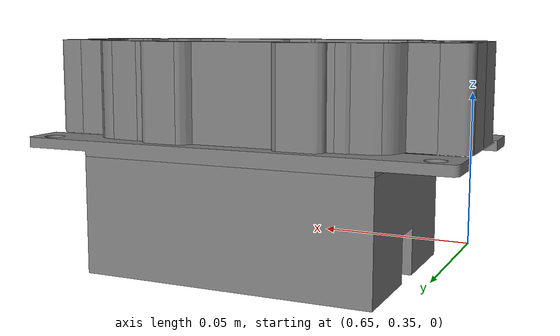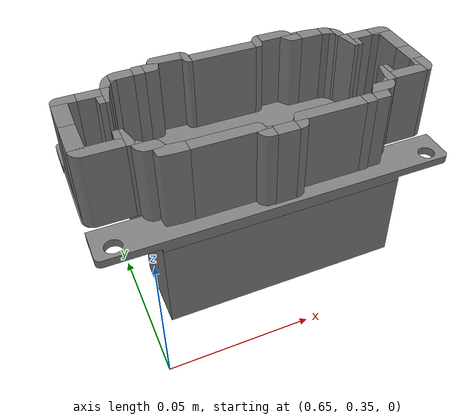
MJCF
<?xml version="1.0" ?>
<mujoco>
   <asset>
      <mesh name="Female_NIST_002r005002" file="Female_NIST/Female_NIST_002r.005002.stl"/>
      <mesh name="Female_NIST_002r006005" file="Female_NIST/Female_NIST_002r.006005.stl"/>
      <mesh name="Female_NIST_002r005000" file="Female_NIST/Female_NIST_002r.005000.stl"/>
      <mesh name="Female_NIST_002r001005" file="Female_NIST/Female_NIST_002r.001005.stl"/>
      <mesh name="Female_NIST_002r003003" file="Female_NIST/Female_NIST_002r.003003.stl"/>
      <mesh name="Female_NIST_002r006009" file="Female_NIST/Female_NIST_002r.006009.stl"/>
      <mesh name="Female_NIST_002r004008" file="Female_NIST/Female_NIST_002r.004008.stl"/>
      <mesh name="Female_NIST_002r004003" file="Female_NIST/Female_NIST_002r.004003.stl"/>
      <mesh name="Female_NIST_002r003000" file="Female_NIST/Female_NIST_002r.003000.stl"/>
      <mesh name="Female_NIST_002r005003" file="Female_NIST/Female_NIST_002r.005003.stl"/>
      <mesh name="Female_NIST_002r002003" file="Female_NIST/Female_NIST_002r.002003.stl"/>
      <mesh name="Female_NIST_002r006002" file="Female_NIST/Female_NIST_002r.006002.stl"/>
      <mesh name="Female_NIST_002r006004" file="Female_NIST/Female_NIST_002r.006004.stl"/>
      <mesh name="Female_NIST_002r004007" file="Female_NIST/Female_NIST_002r.004007.stl"/>
      <mesh name="Female_NIST_002r004001" file="Female_NIST/Female_NIST_002r.004001.stl"/>
      <mesh name="Female_NIST_002r002000" file="Female_NIST/Female_NIST_002r.002000.stl"/>
      <mesh name="Female_NIST_002r003006" file="Female_NIST/Female_NIST_002r.003006.stl"/>
      <mesh name="Female_NIST_002r005004" file="Female_NIST/Female_NIST_002r.005004.stl"/>
      <mesh name="Female_NIST_003" file="Female_NIST/Female_NIST_003.stl"/>
      <mesh name="Female_NIST_002r003002" file="Female_NIST/Female_NIST_002r.003002.stl"/>
      <mesh name="Female_NIST_002r002002" file="Female_NIST/Female_NIST_002r.002002.stl"/>
      <mesh name="Female_NIST_002r001006" file="Female_NIST/Female_NIST_002r.001006.stl"/>
      <mesh name="Female_NIST_002r005001" file="Female_NIST/Female_NIST_002r.005001.stl"/>
      <mesh name="Female_NIST_002r004005" file="Female_NIST/Female_NIST_002r.004005.stl"/>
      <mesh name="Female_NIST_002r003005" file="Female_NIST/Female_NIST_002r.003005.stl"/>
      <mesh name="Female_NIST_002r005005" file="Female_NIST/Female_NIST_002r.005005.stl"/>
      <mesh name="Female_NIST_001" file="Female_NIST/Female_NIST_001.stl"/>
      <mesh name="Female_NIST_002r006007" file="Female_NIST/Female_NIST_002r.006007.stl"/>
      <mesh name="Female_NIST_002r003009" file="Female_NIST/Female_NIST_002r.003009.stl"/>
      <mesh name="Female_NIST_004" file="Female_NIST/Female_NIST_004.stl"/>
      <mesh name="Female_NIST_002r004000" file="Female_NIST/Female_NIST_002r.004000.stl"/>
      <mesh name="Female_NIST_002r001002" file="Female_NIST/Female_NIST_002r.001002.stl"/>
      <mesh name="Female_NIST_002r001003" file="Female_NIST/Female_NIST_002r.001003.stl"/>
      <mesh name="Female_NIST_002r003007" file="Female_NIST/Female_NIST_002r.003007.stl"/>
      <mesh name="Female_NIST_002r004002" file="Female_NIST/Female_NIST_002r.004002.stl"/>
      <mesh name="Female_NIST_002r001004" file="Female_NIST/Female_NIST_002r.001004.stl"/>
      <mesh name="Female_NIST_002r003001" file="Female_NIST/Female_NIST_002r.003001.stl"/>
      <mesh name="Female_NIST_002r003008" file="Female_NIST/Female_NIST_002r.003008.stl"/>
      <mesh name="Female_NIST_002r005007" file="Female_NIST/Female_NIST_002r.005007.stl"/>
      <mesh name="Female_NIST_002r002005" file="Female_NIST/Female_NIST_002r.002005.stl"/>
      <mesh name="Female_NIST_002r001001" file="Female_NIST/Female_NIST_002r.001001.stl"/>
      <mesh name="Female_NIST_002r002004" file="Female_NIST/Female_NIST_002r.002004.stl"/>
      <mesh name="Female_NIST_002r004006" file="Female_NIST/Female_NIST_002r.004006.stl"/>
      <mesh name="Female_NIST_002r006000" file="Female_NIST/Female_NIST_002r.006000.stl"/>
      <mesh name="Female_NIST_002r005006" file="Female_NIST/Female_NIST_002r.005006.stl"/>
      <mesh name="Female_NIST_002r006001" file="Female_NIST/Female_NIST_002r.006001.stl"/>
      <mesh name="Female_NIST_002r002001" file="Female_NIST/Female_NIST_002r.002001.stl"/>
      <mesh name="Female_NIST_002r006006" file="Female_NIST/Female_NIST_002r.006006.stl"/>
      <mesh name="Female_NIST_002r006008" file="Female_NIST/Female_NIST_002r.006008.stl"/>
      <mesh name="Female_NIST_002r003004" file="Female_NIST/Female_NIST_002r.003004.stl"/>
      <mesh name="Female_NIST_002r004004" file="Female_NIST/Female_NIST_002r.004004.stl"/>
      <mesh name="Female_NIST_002r006003" file="Female_NIST/Female_NIST_002r.006003.stl"/>
      <mesh name="Female_NIST_002r001000" file="Female_NIST/Female_NIST_002r.001000.stl"/>
   </asset>
   <worldbody>
      <body name="nist_female" pos="0.7 0.4 -0.00002">
         <freejoint name="free_joint_female"/>
         <inertial pos="0 0 0" mass="0.1" diaginertia="0.001 0.001 0.001"/>
         <geom name="Female_NIST_002r005002" type="mesh" mesh="Female_NIST_002r005002" pos="0 0 0" conaffinity="1" contype="1"/>
         <geom name="Female_NIST_002r006005" type="mesh" mesh="Female_NIST_002r006005" pos="0 0 0" conaffinity="1" contype="1"/>
         <geom name="Female_NIST_002r005000" type="mesh" mesh="Female_NIST_002r005000" pos="0 0 0" conaffinity="1" contype="1"/>
         <geom name="Female_NIST_002r001005" type="mesh" mesh="Female_NIST_002r001005" pos="0 0 0" conaffinity="1" contype="1"/>
         <geom name="Female_NIST_002r003003" type="mesh" mesh="Female_NIST_002r003003" pos="0 0 0" conaffinity="1" contype="1"/>
         <geom name="Female_NIST_002r006009" type="mesh" mesh="Female_NIST_002r006009" pos="0 0 0" conaffinity="1" contype="1"/>
         <geom name="Female_NIST_002r004008" type="mesh" mesh="Female_NIST_002r004008" pos="0 0 0" conaffinity="1" contype="1"/>
         <geom name="Female_NIST_002r004003" type="mesh" mesh="Female_NIST_002r004003" pos="0 0 0" conaffinity="1" contype="1"/>
         <geom name="Female_NIST_002r003000" type="mesh" mesh="Female_NIST_002r003000" pos="0 0 0" conaffinity="1" contype="1"/>
         <geom name="Female_NIST_002r005003" type="mesh" mesh="Female_NIST_002r005003" pos="0 0 0" conaffinity="1" contype="1"/>
         <geom name="Female_NIST_002r002003" type="mesh" mesh="Female_NIST_002r002003" pos="0 0 0" conaffinity="1" contype="1"/>
         <geom name="Female_NIST_002r006002" type="mesh" mesh="Female_NIST_002r006002" pos="0 0 0" conaffinity="1" contype="1"/>
         <geom name="Female_NIST_002r006004" type="mesh" mesh="Female_NIST_002r006004" pos="0 0 0" conaffinity="1" contype="1"/>
         <geom name="Female_NIST_002r004007" type="mesh" mesh="Female_NIST_002r004007" pos="0 0 0" conaffinity="1" contype="1"/>
         <geom name="Female_NIST_002r004001" type="mesh" mesh="Female_NIST_002r004001" pos="0 0 0" conaffinity="1" contype="1"/>
         <geom name="Female_NIST_002r002000" type="mesh" mesh="Female_NIST_002r002000" pos="0 0 0" conaffinity="1" contype="1"/>
         <geom name="Female_NIST_002r003006" type="mesh" mesh="Female_NIST_002r003006" pos="0 0 0" conaffinity="1" contype="1"/>
         <geom name="Female_NIST_002r005004" type="mesh" mesh="Female_NIST_002r005004" pos="0 0 0" conaffinity="1" contype="1"/>
         <geom name="Female_NIST_003" type="mesh" mesh="Female_NIST_003" pos="0 0 0" conaffinity="1" contype="1"/>
         <geom name="Female_NIST_002r003002" type="mesh" mesh="Female_NIST_002r003002" pos="0 0 0" conaffinity="1" contype="1"/>
         <geom name="Female_NIST_002r002002" type="mesh" mesh="Female_NIST_002r002002" pos="0 0 0" conaffinity="1" contype="1"/>
         <geom name="Female_NIST_002r001006" type="mesh" mesh="Female_NIST_002r001006" pos="0 0 0" conaffinity="1" contype="1"/>
         <geom name="Female_NIST_002r005001" type="mesh" mesh="Female_NIST_002r005001" pos="0 0 0" conaffinity="1" contype="1"/>
         <geom name="Female_NIST_002r004005" type="mesh" mesh="Female_NIST_002r004005" pos="0 0 0" conaffinity="1" contype="1"/>
         <geom name="Female_NIST_002r003005" type="mesh" mesh="Female_NIST_002r003005" pos="0 0 0" conaffinity="1" contype="1"/>
         <geom name="Female_NIST_002r005005" type="mesh" mesh="Female_NIST_002r005005" pos="0 0 0" conaffinity="1" contype="1"/>
         <geom name="Female_NIST_001" type="mesh" mesh="Female_NIST_001" pos="0 0 0" conaffinity="1" contype="1"/>
         <geom name="Female_NIST_002r006007" type="mesh" mesh="Female_NIST_002r006007" pos="0 0 0" conaffinity="1" contype="1"/>
         <geom name="Female_NIST_002r003009" type="mesh" mesh="Female_NIST_002r003009" pos="0 0 0" conaffinity="1" contype="1"/>
         <geom name="Female_NIST_002r004000" type="mesh" mesh="Female_NIST_002r004000" pos="0 0 0" conaffinity="1" contype="1"/>
         <geom name="Female_NIST_002r001002" type="mesh" mesh="Female_NIST_002r001002" pos="0 0 0" conaffinity="1" contype="1"/>
         <geom name="Female_NIST_002r001003" type="mesh" mesh="Female_NIST_002r001003" pos="0 0 0" conaffinity="1" contype="1"/>
         <geom name="Female_NIST_002r003007" type="mesh" mesh="Female_NIST_002r003007" pos="0 0 0" conaffinity="1" contype="1"/>
         <geom name="Female_NIST_002r004002" type="mesh" mesh="Female_NIST_002r004002" pos="0 0 0" conaffinity="1" contype="1"/>
         <geom name="Female_NIST_002r001004" type="mesh" mesh="Female_NIST_002r001004" pos="0 0 0" conaffinity="1" contype="1"/>
         <geom name="Female_NIST_002r003001" type="mesh" mesh="Female_NIST_002r003001" pos="0 0 0" conaffinity="1" contype="1"/>
         <geom name="Female_NIST_002r003008" type="mesh" mesh="Female_NIST_002r003008" pos="0 0 0" conaffinity="1" contype="1"/>
         <geom name="Female_NIST_002r005007" type="mesh" mesh="Female_NIST_002r005007" pos="0 0 0" conaffinity="1" contype="1"/>
         <geom name="Female_NIST_002r002005" type="mesh" mesh="Female_NIST_002r002005" pos="0 0 0" conaffinity="1" contype="1"/>
         <geom name="Female_NIST_002r001001" type="mesh" mesh="Female_NIST_002r001001" pos="0 0 0" conaffinity="1" contype="1"/>
         <geom name="Female_NIST_002r002004" type="mesh" mesh="Female_NIST_002r002004" pos="0 0 0" conaffinity="1" contype="1"/>
         <geom name="Female_NIST_002r004006" type="mesh" mesh="Female_NIST_002r004006" pos="0 0 0" conaffinity="1" contype="1"/>
         <geom name="Female_NIST_002r006000" type="mesh" mesh="Female_NIST_002r006000" pos="0 0 0" conaffinity="1" contype="1"/>
         <geom name="Female_NIST_002r005006" type="mesh" mesh="Female_NIST_002r005006" pos="0 0 0" conaffinity="1" contype="1"/>
         <geom name="Female_NIST_002r006001" type="mesh" mesh="Female_NIST_002r006001" pos="0 0 0" conaffinity="1" contype="1"/>
         <geom name="Female_NIST_002r002001" type="mesh" mesh="Female_NIST_002r002001" pos="0 0 0" conaffinity="1" contype="1"/>
         <geom name="Female_NIST_002r006006" type="mesh" mesh="Female_NIST_002r006006" pos="0 0 0" conaffinity="1" contype="1"/>
         <geom name="Female_NIST_002r006008" type="mesh" mesh="Female_NIST_002r006008" pos="0 0 0" conaffinity="1" contype="1"/>
         <geom name="Female_NIST_002r003004" type="mesh" mesh="Female_NIST_002r003004" pos="0 0 0" conaffinity="1" contype="1"/>
         <geom name="Female_NIST_002r004004" type="mesh" mesh="Female_NIST_002r004004" pos="0 0 0" conaffinity="1" contype="1"/>
         <geom name="Female_NIST_002r006003" type="mesh" mesh="Female_NIST_002r006003" pos="0 0 0" conaffinity="1" contype="1"/>
         <geom name="Female_NIST_002r001000" type="mesh" mesh="Female_NIST_002r001000" pos="0 0 0" conaffinity="1" contype="1"/>
      </body>
   </worldbody>
</mujoco>
